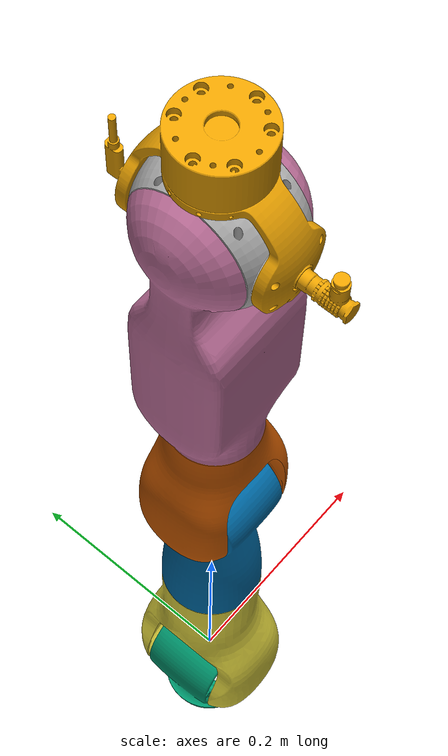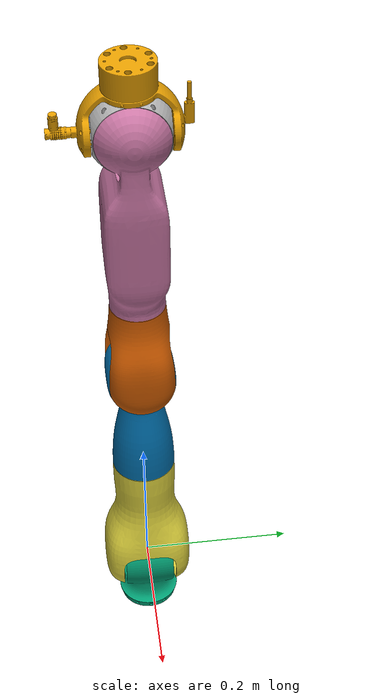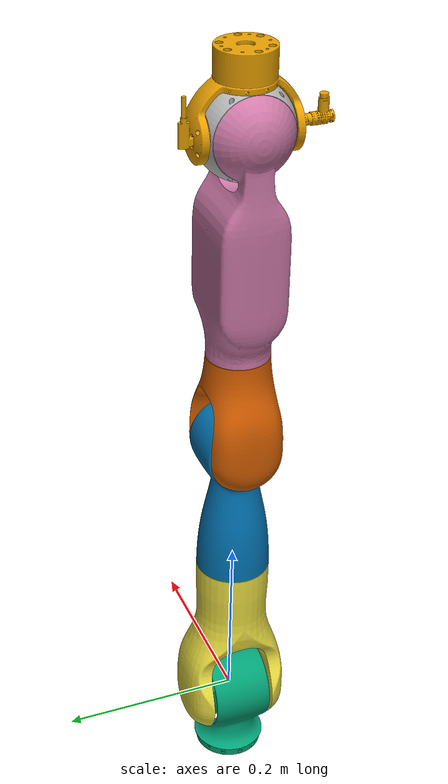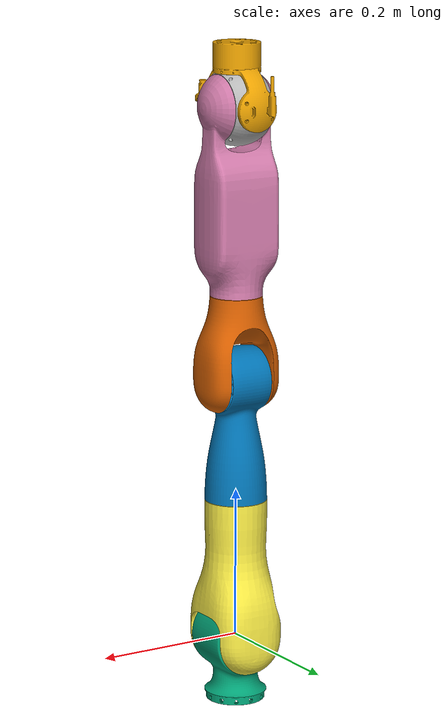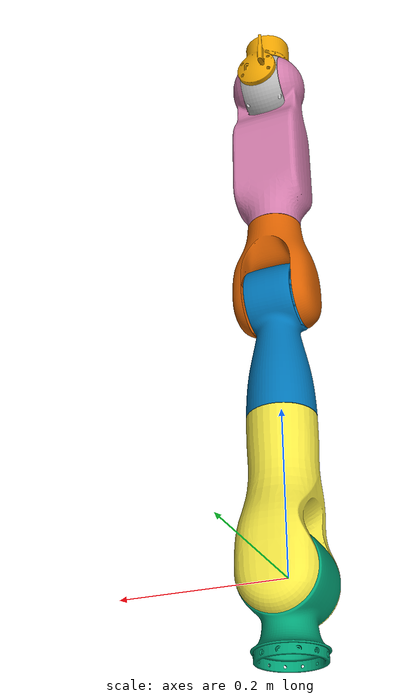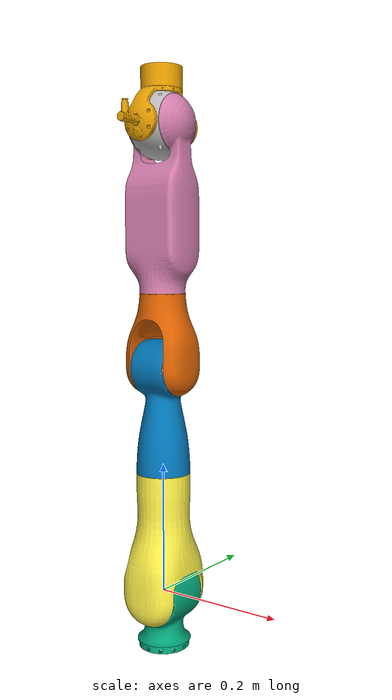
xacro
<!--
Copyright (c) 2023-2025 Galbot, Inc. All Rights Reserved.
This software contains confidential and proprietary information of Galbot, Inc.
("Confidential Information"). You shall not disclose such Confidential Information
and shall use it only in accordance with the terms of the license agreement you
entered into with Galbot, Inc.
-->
<?xml version="1.0"?>

<robot name="right_arm"
    xmlns:xacro="http://ros.org/wiki/xacro">
    <!-- Include-->
    <xacro:include filename="$(find galbot_one_charlie_description)/xacro/arm/right_arm.xacro" />
    <!-- Properties -->
    <xacro:property name="M_PI" value="3.1415926535897931" />
    <!-- Parent link -->
    <link name="base_link" />
    <xacro:right_arm parent="base_link" name="right_arm">
        <origin xyz="0 0 0" rpy="0 0 0" />
    </xacro:right_arm>
</robot>

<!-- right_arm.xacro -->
<robot xmlns:xacro="http://www.ros.org/wiki/xacro" name="right_arm">

  <xacro:macro name="inertial_matrix" params="mass">
    <inertial>
      <mass value="${mass}" />
      <inertia ixx="1.0" ixy="0.0" ixz="0.0" iyy="0.5" iyz="0.0" izz="1.0" />
    </inertial>
  </xacro:macro>
  <xacro:macro name="Box_inertial_matrix" params="m l w h">
    <inertial>
      <mass value="${m}" />
      <inertia ixx="${m*(h*h + l*l)/12}" ixy="0" ixz="0" iyy="${m*(w*w + l*l)/12}" iyz="0"
        izz="${m*(w*w + h*h)/12}" />
    </inertial>
  </xacro:macro>

  <xacro:macro name="right_arm" params="parent *origin name:=arm">
    <xacro:property name="M_PI" value="3.1415926535897931" />

    <joint name="${name}_joint" type="fixed">
      <xacro:insert_block name="origin" />
      <parent link="${parent}" />
      <child link="${name}_base_link" />
    </joint>

    <link name="${name}_base_link">
      <inertial>
        <origin rpy="0 0 0" xyz="-0.00037 -0.00006 -0.11407" />
        <mass value="0.9" />
        <inertia ixx="0.01248" ixy="0.00000" ixz="0.00003" iyy="0.01247" iyz="0.00003" izz="0.00056" />
      </inertial>
    </link>
    <link name="${name}_link1">
      <inertial>
        <origin rpy="0 0 0" xyz="0.00000 -0.00650 -0.01459" />
        <mass value="1.48" />
        <inertia ixx="0.00378" ixy="0.00000" ixz="0.00000" iyy="0.00460" iyz="0.00008" izz="0.00217" />
      </inertial>
      <visual>
        <origin xyz="0 0 0" rpy="0 0 0" />
        <geometry>
          <mesh filename="package://galbot_one_charlie_description/meshes/arm/right_arm_link1.obj" />
        </geometry>

      </visual>
      <collision>
        <origin xyz="0 0 0" rpy="0 0 0" />
        <geometry>
          <mesh filename="package://galbot_one_charlie_description/meshes/arm/right_arm_link1.stl" />
        </geometry>
      </collision>
    </link>
    <joint name="${name}_joint1" type="revolute">
      <origin xyz="0 0 0" rpy="0 0 0" />
      <parent link="${name}_base_link" />
      <child link="${name}_link1" />
      <axis xyz="0 0 1" />
      <limit lower="-3" upper="3" effort="60" velocity="1.5" acceleration="2" jerk="12" />
      <dynamics damping="0" friction="0" />
    </joint>
    <link name="${name}_link2">
      <inertial>
        <origin rpy="0 0 0" xyz="-0.00080 -0.09873 0.00815" />
        <mass value="1.33" />
        <inertia ixx="0.01827" ixy="0.00003" ixz="0.00001" iyy="0.00232" iyz="0.00080" izz="0.01769" />
      </inertial>
      <visual>
        <origin xyz="0 0 0" rpy="0 0 0" />
        <geometry>
          <mesh filename="package://galbot_one_charlie_description/meshes/arm/right_arm_link2.obj" />
        </geometry>

      </visual>
      <collision>
        <origin xyz="0 0 0" rpy="0 0 0" />
        <geometry>
          <mesh filename="package://galbot_one_charlie_description/meshes/arm/right_arm_link2.stl" />
        </geometry>
      </collision>
    </link>
    <joint name="${name}_joint2" type="revolute">
      <origin xyz="0 0 0" rpy="${-M_PI/2} 0 ${M_PI}" />
      <parent link="${name}_link1" />
      <child link="${name}_link2" />
      <axis xyz="0 0 1" />
      <limit lower="-${M_PI/2}" upper="1.7" effort="60" velocity="1.5" acceleration="2" jerk="12" />
      <dynamics damping="0" friction="0" />
    </joint>
    <link name="${name}_link3">
      <inertial>
        <origin rpy="0 0 0" xyz="-0.00019 -0.00330 -0.04824" />
        <mass value="1.25" />
        <inertia ixx="0.00955" ixy="0.00000" ixz="0.00001" iyy="0.00983" iyz="0.00007" izz="0.00151" />
      </inertial>
      <visual>
        <origin xyz="0 0 0" rpy="0 0 0" />
        <geometry>
          <mesh filename="package://galbot_one_charlie_description/meshes/arm/right_arm_link3.obj" />
        </geometry>

      </visual>
      <collision>
        <origin xyz="0 0 0" rpy="0 0 0" />
        <geometry>
          <mesh filename="package://galbot_one_charlie_description/meshes/arm/right_arm_link3.stl" />
        </geometry>
      </collision>
    </link>
    <joint name="${name}_joint3" type="revolute">
      <origin xyz="0 -0.35 0" rpy="${M_PI/2} ${-M_PI/2} 0" />
      <parent link="${name}_link2" />
      <child link="${name}_link3" />
      <axis xyz="0 0 1" />
      <limit lower="-2.9" upper="2.9" effort="30" velocity="1.5" acceleration="2" jerk="12" />
      <dynamics damping="0" friction="0" />
    </joint>
    <link name="${name}_link4">
      <inertial>
        <origin rpy="0 0 0" xyz="0.00000 -0.06457 0.00899" />
        <mass value="0.8" />
        <inertia ixx="0.00529" ixy="0.00000" ixz="0.00000" iyy="0.00120" iyz="0.00030" izz="0.00488" />
      </inertial>
      <visual>
        <origin xyz="0 0 0" rpy="0 0 0" />
        <geometry>
          <mesh filename="package://galbot_one_charlie_description/meshes/arm/right_arm_link4.obj" />
        </geometry>

      </visual>
      <collision>
        <origin xyz="0 0 0" rpy="0 0 0" />
        <geometry>
          <mesh filename="package://galbot_one_charlie_description/meshes/arm/right_arm_link4.stl" />
        </geometry>
      </collision>
    </link>
    <joint name="${name}_joint4" type="revolute">
      <origin xyz="0 0 0" rpy="${-M_PI/2} 0 ${M_PI}" />
      <parent link="${name}_link3" />
      <child link="${name}_link4" />
      <axis xyz="0 0 1" />
      <limit lower="-2.1" upper="2.1" effort="30" velocity="1.5" acceleration="2" jerk="12" />
      <dynamics damping="0" friction="0" />
    </joint>
    <link name="${name}_link5">
      <inertial>
        <origin rpy="0 0 0" xyz="0.00201 -0.00042 -0.14589" />
        <mass value="1.22" />
        <inertia ixx="0.03428" ixy="0.00001" ixz="0.00032" iyy="0.03366" iyz="0.00005" izz="0.00222" />
      </inertial>
      <visual>
        <origin xyz="0 0 0" rpy="0 0 0" />
        <geometry>
          <mesh filename="package://galbot_one_charlie_description/meshes/arm/right_arm_link5.obj" />
        </geometry>

      </visual>
      <collision>
        <origin xyz="0 0 0" rpy="0 0 0" />
        <geometry>
          <mesh filename="package://galbot_one_charlie_description/meshes/arm/right_arm_link5.stl" />
        </geometry>
      </collision>
    </link>
    <joint name="${name}_joint5" type="revolute">
      <origin xyz="0 -0.36 0" rpy="${M_PI/2} 0 0" />
      <parent link="${name}_link4" />
      <child link="${name}_link5" />
      <axis xyz="0 0 1" />
      <limit lower="-2.9" upper="2.9" effort="10" velocity="1.5" acceleration="2" jerk="12" />
      <dynamics damping="0" friction="0" />
    </joint>
    <link name="${name}_link6">
      <inertial>
        <origin rpy="0 0 0" xyz="0.00000 0.01031 0.00000" />
        <mass value="0.43" />
        <inertia ixx="0.00051" ixy="0.00000" ixz="0.00000" iyy="0.00070" iyz="0.00000" izz="0.00091" />
      </inertial>
      <visual>
        <origin xyz="0 0 0" rpy="0 0 0" />
        <geometry>
          <mesh filename="package://galbot_one_charlie_description/meshes/arm/right_arm_link6.obj" />
        </geometry>

      </visual>
      <collision>
        <origin xyz="0 0 0" rpy="0 0 0" />
        <geometry>
          <mesh filename="package://galbot_one_charlie_description/meshes/arm/right_arm_link6.stl" />
        </geometry>
      </collision>
    </link>
    <joint name="${name}_joint6" type="revolute">
      <origin xyz="0 0 0" rpy="${-M_PI/2} ${M_PI/2} ${M_PI}" />
      <parent link="${name}_link5" />
      <child link="${name}_link6" />
      <axis xyz="0 0 1" />
      <limit lower="-0.785398163" upper="0.785398163" effort="10" velocity="1.5" acceleration="2"
        jerk="12" />
      <dynamics damping="0" friction="0" />
    </joint>
    <link name="${name}_link7">
      <inertial>
        <origin rpy="0 0 0" xyz="-0.03291 0.00799 -0.00131" />
        <mass value="0.6" />
        <inertia ixx="0.00124" ixy="0.00030" ixz="0.00013" iyy="0.00198" iyz="0.00007" izz="0.00164" />
      </inertial>
      <visual>
        <origin xyz="0 0 0" rpy="0 0 0" />
        <geometry>
          <mesh filename="package://galbot_one_charlie_description/meshes/arm/right_arm_link7.obj" />
        </geometry>

      </visual>
      <collision>
        <origin xyz="0 0 0" rpy="0 0 0" />
        <geometry>
          <mesh filename="package://galbot_one_charlie_description/meshes/arm/right_arm_link7.stl" />
        </geometry>
      </collision>
    </link>
    <joint name="${name}_joint7" type="revolute">
      <origin xyz="0 0 0" rpy="${-M_PI/2} 0 0" />
      <parent link="${name}_link6" />
      <child link="${name}_link7" />
      <axis xyz="0 0 1" />
      <limit lower="-1.4" upper="1.4" effort="10" velocity="1.5" acceleration="2" jerk="12" />
      <dynamics damping="0" friction="0" />
    </joint>

    <link name="${name}_end_effector_mount_link">
      <inertial>
        <origin xyz="0 0 0" rpy="0 0 0" />
        <mass value="0" />
        <inertia ixx="0" ixy="0" ixz="0" iyy="0" iyz="0" izz="0" />
      </inertial>
    </link>
    <joint name="${name}_end_effector_mount_joint" type="fixed">
      <origin xyz="-0.083 0 0" rpy="${M_PI/2} 0 ${M_PI}" />
      <parent link="${name}_link7" />
      <child link="${name}_end_effector_mount_link" />
      <axis xyz="0 0 0" />
    </joint>

  </xacro:macro>

</robot>
